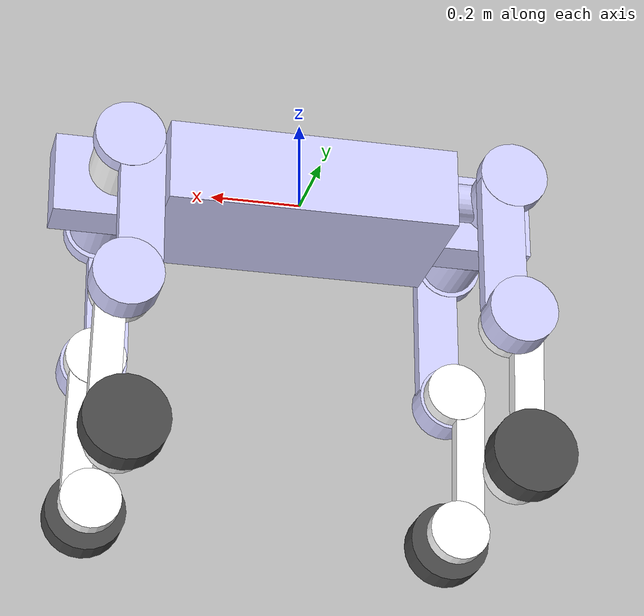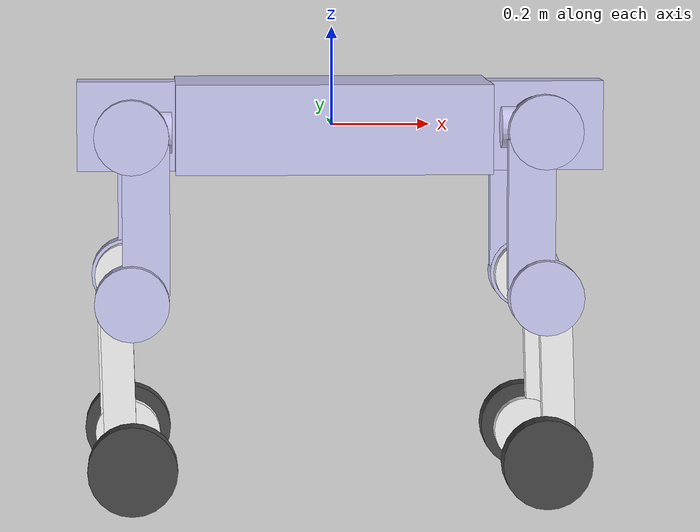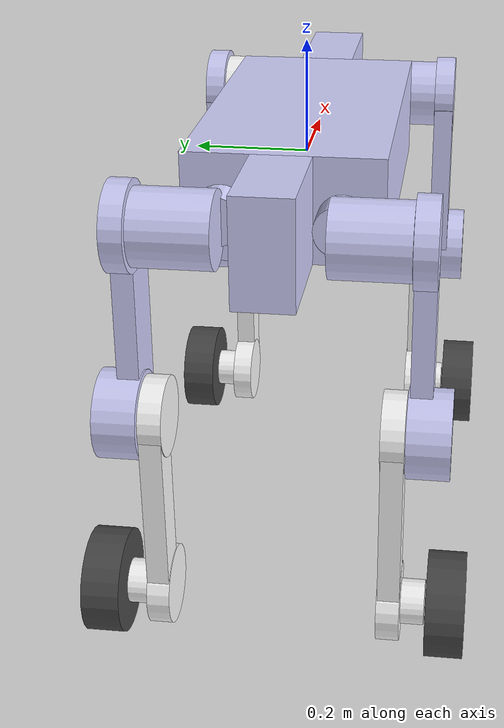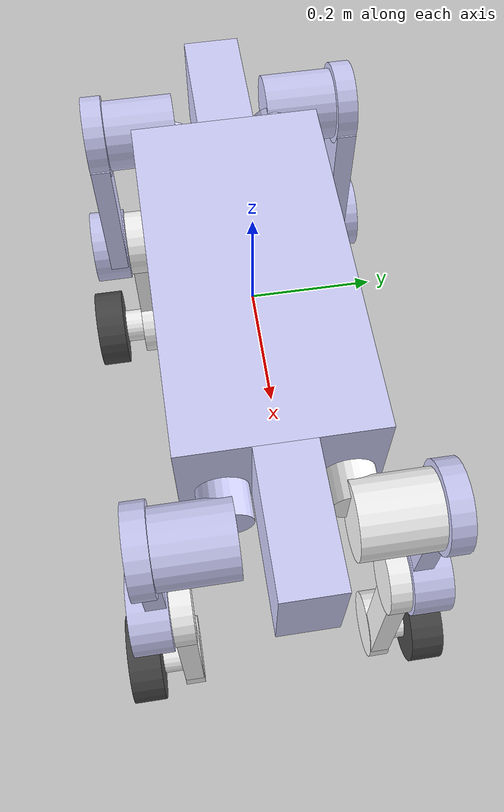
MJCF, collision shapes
<mujoco model="m20_big">
  <compiler angle="radian" meshdir="../meshes/"/>

  <asset>
    <mesh name="base" file="base.STL"/>
    <mesh name="FR_hip" file="FR_hip.STL"/>
    <mesh name="FR_thigh" file="FR_thigh.STL"/>
    <mesh name="FR_calf" file="FR_calf.STL"/>
    <mesh name="FR_wheel" file="FR_wheel.STL"/>
    <mesh name="FL_hip" file="FL_hip.STL"/>
    <mesh name="FL_thigh" file="FL_thigh.STL"/>
    <mesh name="FL_calf" file="FL_calf.STL"/>
    <mesh name="FL_wheel" file="FL_wheel.STL"/>
    <mesh name="RR_hip" file="RR_hip.STL"/>
    <mesh name="RR_thigh" file="RR_thigh.STL"/>
    <mesh name="RR_calf" file="RR_calf.STL"/>
    <mesh name="RR_wheel" file="RR_wheel.STL"/>
    <mesh name="RL_hip" file="RL_hip.STL"/>
    <mesh name="RL_thigh" file="RL_thigh.STL"/>
    <mesh name="RL_calf" file="RL_calf.STL"/>
    <mesh name="RL_wheel" file="RL_wheel.STL"/>
  </asset>

  <worldbody>
    <body name="base">
      <inertial pos="0.01588 -0.012088 0.003592" quat="0.00498892 0.707082 0.00522655 0.707095" mass="28.762" diaginertia="2.29693 2.15729 0.348949"/>
      <joint name="floating_base_joint" type="free"/>
      <geom type="mesh" contype="0" conaffinity="0" group="1" density="0" rgba="0.823529 0.823529 1 1" mesh="base"/>
      <geom size="0.32 0.166 0.091" pos="0 -0.002 0" type="box" rgba="0.823529 0.823529 1 1"/>
      <geom size="0.1175 0.05 0.091" pos="0.436 0 0" type="box" rgba="0.823529 0.823529 1 1"/>
      <geom size="0.1 0.05 0.091" pos="-0.42 0 0" type="box" rgba="0.823529 0.823529 1 1"/>
      <body name="FR_hip" pos="0.3304 -0.099245 -0.00021622">
        <inertial pos="0.049898 -0.016738 -0.001076" quat="0.447986 0.323075 0.639017 0.535339" mass="1.024" diaginertia="0.00358965 0.00336041 0.00153094"/>
        <joint name="FR_hip_joint" pos="0 0 0" axis="1 0 0" range="-0.436 0.611" actuatorfrcrange="-76.4 76.4"/>
        <geom type="mesh" contype="0" conaffinity="0" group="1" density="0" rgba="0.823529 0.823529 1 1" mesh="FR_hip"/>
        <geom size="0.042 0.03" pos="0.04 0 0" quat="0.707388 0 0.706825 0" type="cylinder" rgba="0.823529 0.823529 1 1"/>
        <geom size="0.0643 0.065" pos="0.09 -0.0535 0" quat="0.707388 0.706825 0 0" type="cylinder" rgba="0.823529 0.823529 1 1"/>
        <body name="FR_thigh" pos="0.0886403 -0.0798469 -0.00030154">
          <inertial pos="-0.002186 -0.046729 -0.169142" quat="0.703235 0.028226 -0.0276883 0.709857" mass="4.376" diaginertia="0.118698 0.115288 0.00656187"/>
          <joint name="FR_thigh_joint" pos="0 0 0" axis="0 1 0" range="-2.583 2.286" actuatorfrcrange="-76.4 76.4"/>
          <geom type="mesh" contype="0" conaffinity="0" group="1" density="0" rgba="0.823529 0.823529 1 1" mesh="FR_thigh"/>
          <geom size="0.0475 0.01825 0.15" pos="-0.0285 -0.055 -0.165" type="box" rgba="0.823529 0.823529 1 1"/>
          <geom size="0.075 0.036" pos="0 -0.07 -0.33" quat="0.707388 0.706825 0 0" type="cylinder" rgba="0.823529 0.823529 1 1"/>
          <geom size="0.075 0.01875" pos="0 -0.055 0" quat="0.707388 0.706825 0 0" type="cylinder" rgba="0.823529 0.823529 1 1"/>
          <body name="FR_calf" pos="0 -0.0331089 -0.33">
            <inertial pos="0.0075 0.01135 -0.16329" quat="0.721057 0.0238369 -0.0210289 0.692146" mass="1.278" diaginertia="0.0279115 0.0268394 0.00216508"/>
            <joint name="FR_calf_joint" pos="0 0 0" axis="0 1 0" range="-2.792 2.809" actuatorfrcrange="-76.4 76.4"/>
            <geom type="mesh" contype="0" conaffinity="0" group="1" density="0" rgba="1 1 1 1" mesh="FR_calf"/>
            <geom size="0.0325 0.01875 0.15" pos="0.028 0.0195 -0.165" quat="0.999888 0 -0.0149994 0" type="box" rgba="1 1 1 1"/>
            <geom size="0.068 0.0195" pos="0 0.02 -0.33" quat="0.707388 0.706825 0 0" type="cylinder" rgba="1 1 1 1"/>
            <geom size="0.068 0.0195" pos="0 0.02 0" quat="0.707388 0.706825 0 0" type="cylinder" rgba="1 1 1 1"/>
            <geom size="0.0385 0.02" pos="0 -0.02 -0.33" quat="0.707388 0.706825 0 0" type="cylinder" rgba="1 1 1 1"/>
            <body name="FR_wheel" pos="0.000112374 -0.0287002 -0.330042">
              <inertial pos="-0.00011 -0.047924 4.2e-05" quat="0.707107 0 0 0.707107" mass="3.18" diaginertia="0.01238 0.006847 0.006847"/>
              <joint name="FR_foot_joint" pos="0 0 0" axis="0 1 0" range="-999999 999999" actuatorfrcrange="-21.6 21.6"/>
              <geom type="mesh" contype="0" conaffinity="0" group="1" density="0" rgba="0.282353 0.282353 0.282353 1" mesh="FR_wheel"/>
              <geom size="0.09 0.0325" pos="0 -0.047 0" quat="0.707388 0.706825 0 0" type="cylinder" rgba="0.282353 0.282353 0.282353 1"/>
            </body>
          </body>
        </body>
      </body>
      <body name="FL_hip" pos="0.3304 0.096756 -0.00021622">
        <inertial pos="0.054668 0.017679 -0.000496" quat="0.519745 0.627006 0.347794 0.464508" mass="1.024" diaginertia="0.00360948 0.00341276 0.00169176"/>
        <joint name="FL_hip_joint" pos="0 0 0" axis="1 0 0" range="-0.611 0.436" actuatorfrcrange="-76.4 76.4"/>
        <geom type="mesh" contype="0" conaffinity="0" group="1" density="0" rgba="1 1 1 1" mesh="FL_hip"/>
        <geom size="0.042 0.03" pos="0.04 0 0" quat="0.707388 0 0.706825 0" type="cylinder" rgba="1 1 1 1"/>
        <geom size="0.0643 0.065" pos="0.09 0.0535 0" quat="0.707388 0.706825 0 0" type="cylinder" rgba="1 1 1 1"/>
        <body name="FL_thigh" pos="0.0896011 0.082936 0.000217046">
          <inertial pos="-0.002184 0.04671 -0.169145" quat="0.709664 -0.0276758 0.0281586 0.703433" mass="4.376" diaginertia="0.11869 0.115281 0.00656092"/>
          <joint name="FL_thigh_joint" pos="0 0 0" axis="0 1 0" range="-2.583 2.286" actuatorfrcrange="-76.4 76.4"/>
          <geom type="mesh" contype="0" conaffinity="0" group="1" density="0" rgba="0.823529 0.823529 1 1" mesh="FL_thigh"/>
          <geom size="0.0475 0.01825 0.15" pos="-0.0285 0.055 -0.165" type="box" rgba="0.823529 0.823529 1 1"/>
          <geom size="0.075 0.036" pos="0 0.07 -0.33" quat="0.707388 0.706825 0 0" type="cylinder" rgba="0.823529 0.823529 1 1"/>
          <geom size="0.075 0.01875" pos="0 0.055 0" quat="0.707388 0.706825 0 0" type="cylinder" rgba="0.823529 0.823529 1 1"/>
          <body name="FL_calf" pos="0 0.0330573 -0.33">
            <inertial pos="0.007693 -0.011342 -0.163789" quat="0.692701 -0.020635 0.0233317 0.720552" mass="1.278" diaginertia="0.0276231 0.0265555 0.00191536"/>
            <joint name="FL_calf_joint" pos="0 0 0" axis="0 1 0" range="-2.792 2.809" actuatorfrcrange="-76.4 76.4"/>
            <geom type="mesh" contype="0" conaffinity="0" group="1" density="0" rgba="1 1 1 1" mesh="FL_calf"/>
            <geom size="0.0325 0.01875 0.15" pos="0.028 -0.0195 -0.165" quat="0.999888 0 -0.0149994 0" type="box" rgba="1 1 1 1"/>
            <geom size="0.068 0.0195" pos="0 -0.02 -0.33" quat="0.707388 0.706825 0 0" type="cylinder" rgba="1 1 1 1"/>
            <geom size="0.068 0.0195" pos="0 -0.02 0" quat="0.707388 0.706825 0 0" type="cylinder" rgba="1 1 1 1"/>
            <geom size="0.0385 0.02" pos="0 0.02 -0.33" quat="0.707388 0.706825 0 0" type="cylinder" rgba="1 1 1 1"/>
            <body name="FL_wheel" pos="0.000114419 0.028752 -0.329964">
              <inertial pos="-0.000112 0.047924 -3.6e-05" quat="0.707107 0 0 0.707107" mass="3.18" diaginertia="0.012379 0.006847 0.006847"/>
              <joint name="FL_foot_joint" pos="0 0 0" axis="0 1 0" range="-999999 999999" actuatorfrcrange="-21.6 21.6"/>
              <geom type="mesh" contype="0" conaffinity="0" group="1" density="0" rgba="0.282353 0.282353 0.282353 1" mesh="FL_wheel"/>
              <geom size="0.09 0.0325" pos="0 0.047 0" quat="0.707388 0.706825 0 0" type="cylinder" rgba="0.282353 0.282353 0.282353 1"/>
            </body>
          </body>
        </body>
      </body>
      <body name="RR_hip" pos="-0.29716 -0.099245 -0.00021622">
        <inertial pos="-0.073124 -0.020209 -0.009702" quat="0.639525 0.5354 0.447645 0.32244" mass="1.024" diaginertia="0.00359903 0.00336831 0.00154066"/>
        <joint name="RR_hip_joint" pos="0 0 0" axis="1 0 0" range="-0.436 0.611" actuatorfrcrange="-76.4 76.4"/>
        <geom type="mesh" contype="0" conaffinity="0" group="1" density="0" rgba="0.823529 0.823529 1 1" mesh="RR_hip"/>
        <geom size="0.042 0.03" pos="-0.06 0 -0.009" quat="0.707388 0 0.706825 0" type="cylinder" rgba="0.823529 0.823529 1 1"/>
        <geom size="0.0643 0.065" pos="-0.112 -0.0535 -0.009" quat="0.707388 0.706825 0 0" type="cylinder" rgba="0.823529 0.823529 1 1"/>
        <body name="RR_thigh" pos="-0.111606 -0.0830547 -0.00891664">
          <inertial pos="0.002184 -0.046675 -0.169144" quat="0.709658 0.0276681 -0.0281579 0.703439" mass="4.376" diaginertia="0.118711 0.115286 0.00656502"/>
          <joint name="RR_thigh_joint" pos="0 0 0" axis="0 1 0" range="-2.583 2.286" actuatorfrcrange="-76.4 76.4"/>
          <geom type="mesh" contype="0" conaffinity="0" group="1" density="0" rgba="0.823529 0.823529 1 1" mesh="RR_thigh"/>
          <geom size="0.0475 0.01825 0.15" pos="0.0285 -0.055 -0.165" type="box" rgba="0.823529 0.823529 1 1"/>
          <geom size="0.075 0.036" pos="0 -0.07 -0.33" quat="0.707388 0.706825 0 0" type="cylinder" rgba="0.823529 0.823529 1 1"/>
          <geom size="0.075 0.01875" pos="0 -0.055 0" quat="0.707388 0.706825 0 0" type="cylinder" rgba="0.823529 0.823529 1 1"/>
          <body name="RR_calf" pos="0 -0.0330574 -0.33">
            <inertial pos="-0.007691 0.011342 -0.163799" quat="0.692667 0.0206501 -0.0233205 0.720585" mass="1.278" diaginertia="0.0276202 0.0265535 0.00191436"/>
            <joint name="RR_calf_joint" pos="0 0 0" axis="0 1 0" range="-2.809 2.792" actuatorfrcrange="-76.4 76.4"/>
            <geom type="mesh" contype="0" conaffinity="0" group="1" density="0" rgba="1 1 1 1" mesh="RR_calf"/>
            <geom size="0.0325 0.01875 0.15" pos="-0.028 0.0195 -0.165" quat="0.999888 0 -0.0149994 0" type="box" rgba="1 1 1 1"/>
            <geom size="0.068 0.0195" pos="0 0.02 -0.33" quat="0.707388 0.706825 0 0" type="cylinder" rgba="1 1 1 1"/>
            <geom size="0.068 0.0195" pos="0 0.02 0" quat="0.707388 0.706825 0 0" type="cylinder" rgba="1 1 1 1"/>
            <geom size="0.0385 0.02" pos="0 -0.02 -0.33" quat="0.707388 0.706825 0 0" type="cylinder" rgba="1 1 1 1"/>
            <body name="RR_wheel" pos="0.000111969 -0.028752 -0.330029">
              <inertial pos="-0.000114 -0.047924 2.9e-05" quat="0.707107 0 0 0.707107" mass="3.18" diaginertia="0.012379 0.006847 0.006847"/>
              <joint name="RR_foot_joint" pos="0 0 0" axis="0 1 0" range="-999999 999999" actuatorfrcrange="-21.6 21.6"/>
              <geom type="mesh" contype="0" conaffinity="0" group="1" density="0" rgba="0.282353 0.282353 0.282353 1" mesh="RR_wheel"/>
              <geom size="0.09 0.0325" pos="0 -0.047 0" quat="0.707388 0.706825 0 0" type="cylinder" rgba="0.282353 0.282353 0.282353 1"/>
            </body>
          </body>
        </body>
      </body>
      <body name="RL_hip" pos="-0.297165 0.0967556 -0.00021622">
        <inertial pos="-0.084095 0.019827 -0.000555" quat="0.323482 0.447589 0.535901 0.638619" mass="1.024" diaginertia="0.00358862 0.00335954 0.00153083"/>
        <joint name="RL_hip_joint" pos="0 0 0" axis="1 0 0" range="-0.611 0.436" actuatorfrcrange="-76.4 76.4"/>
        <geom type="mesh" contype="0" conaffinity="0" group="1" density="0" rgba="0.823529 0.823529 1 1" mesh="RL_hip"/>
        <geom size="0.042 0.03" pos="-0.06 0 0" quat="0.707388 0 0.706825 0" type="cylinder" rgba="0.823529 0.823529 1 1"/>
        <geom size="0.0643 0.065" pos="-0.1235 0.0535 0" quat="0.707388 0.706825 0 0" type="cylinder" rgba="0.823529 0.823529 1 1"/>
        <body name="RL_thigh" pos="-0.122835 0.0829361 0.000216812">
          <inertial pos="0.002185 0.046712 -0.169142" quat="0.703239 -0.0282652 0.0277275 0.70985" mass="4.376" diaginertia="0.11871 0.115293 0.00656485"/>
          <joint name="RL_thigh_joint" pos="0 0 0" axis="0 1 0" range="-2.286 2.583" actuatorfrcrange="-76.4 76.4"/>
          <geom type="mesh" contype="0" conaffinity="0" group="1" density="0" rgba="0.823529 0.823529 1 1" mesh="RL_thigh"/>
          <geom size="0.0475 0.01825 0.15" pos="0.0285 0.055 -0.165" type="box" rgba="0.823529 0.823529 1 1"/>
          <geom size="0.075 0.036" pos="0 0.07 -0.33" quat="0.707388 0.706825 0 0" type="cylinder" rgba="0.823529 0.823529 1 1"/>
          <geom size="0.075 0.01875" pos="0 0.055 0" quat="0.707388 0.706825 0 0" type="cylinder" rgba="0.823529 0.823529 1 1"/>
          <body name="RL_calf" pos="0 0.0331089 -0.33">
            <inertial pos="-0.007499 -0.01135 -0.16329" quat="0.721089 -0.0236202 0.0208375 0.692126" mass="1.278" diaginertia="0.0279106 0.0268394 0.00192902"/>
            <joint name="RL_calf_joint" pos="0 0 0" axis="0 1 0" range="-2.809 2.792" actuatorfrcrange="-76.4 76.4"/>
            <geom type="mesh" contype="0" conaffinity="0" group="1" density="0" rgba="1 1 1 1" mesh="RL_calf"/>
            <geom size="0.0325 0.01875 0.15" pos="-0.028 -0.0195 -0.165" quat="0.999888 0 -0.0149994 0" type="box" rgba="1 1 1 1"/>
            <geom size="0.068 0.0195" pos="0 -0.02 -0.33" quat="0.707388 0.706825 0 0" type="cylinder" rgba="1 1 1 1"/>
            <geom size="0.068 0.0195" pos="0 -0.02 0" quat="0.707388 0.706825 0 0" type="cylinder" rgba="1 1 1 1"/>
            <geom size="0.0385 0.02" pos="0 0.02 -0.33" quat="0.707388 0.706825 0 0" type="cylinder" rgba="1 1 1 1"/>
            <body name="RL_wheel" pos="-0.000112115 0.0287002 -0.330042">
              <inertial pos="0.00011 0.047924 4.2e-05" quat="0.707107 0 0 0.707107" mass="3.18" diaginertia="0.01238 0.006847 0.006847"/>
              <joint name="RL_foot_joint" pos="0 0 0" axis="0 1 0" range="-999999 999999" actuatorfrcrange="-21.6 21.6"/>
              <geom type="mesh" contype="0" conaffinity="0" group="1" density="0" rgba="0.282353 0.282353 0.282353 1" mesh="RL_wheel"/>
              <geom size="0.09 0.0325" pos="0 0.047 0" quat="0.707388 0.706825 0 0" type="cylinder" rgba="0.282353 0.282353 0.282353 1"/>
            </body>
          </body>
        </body>
      </body>
    </body>
  </worldbody>
</mujoco>
